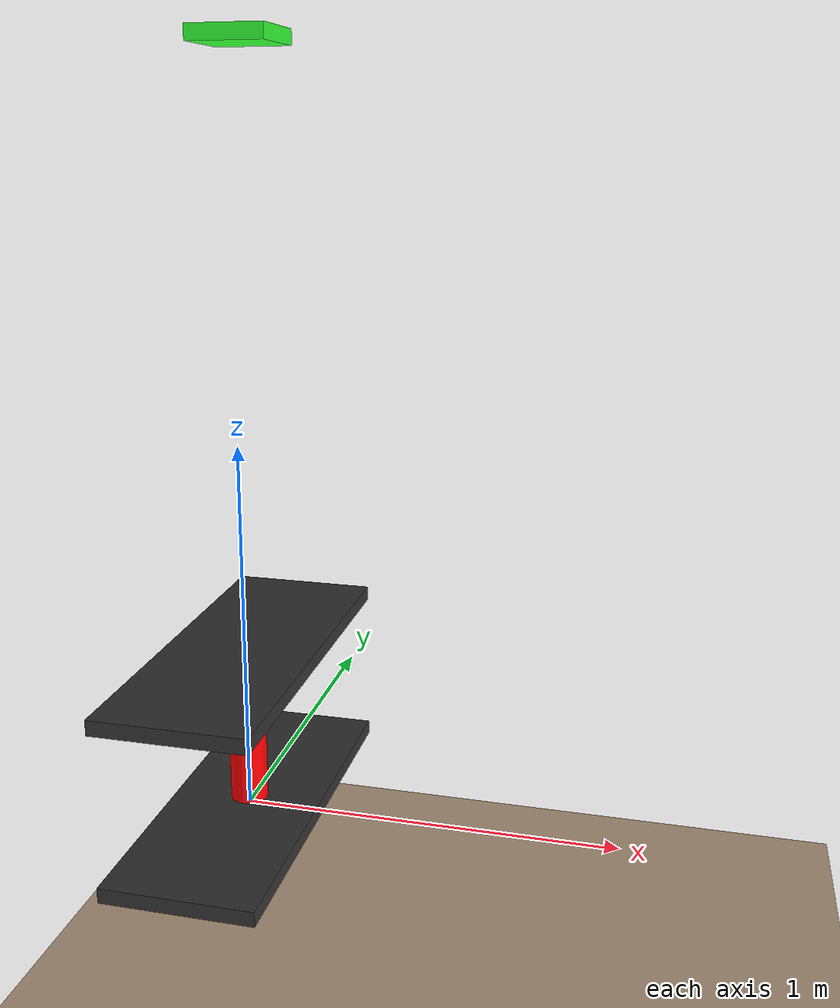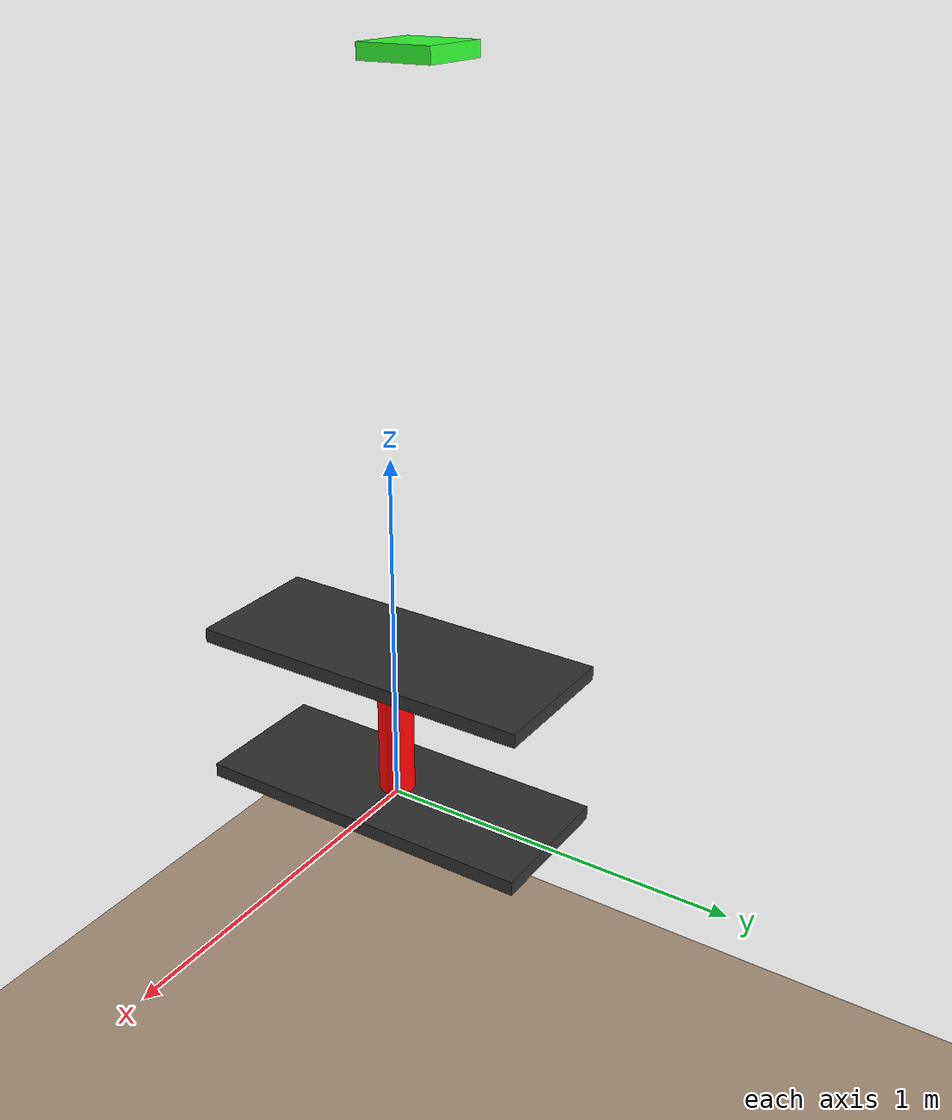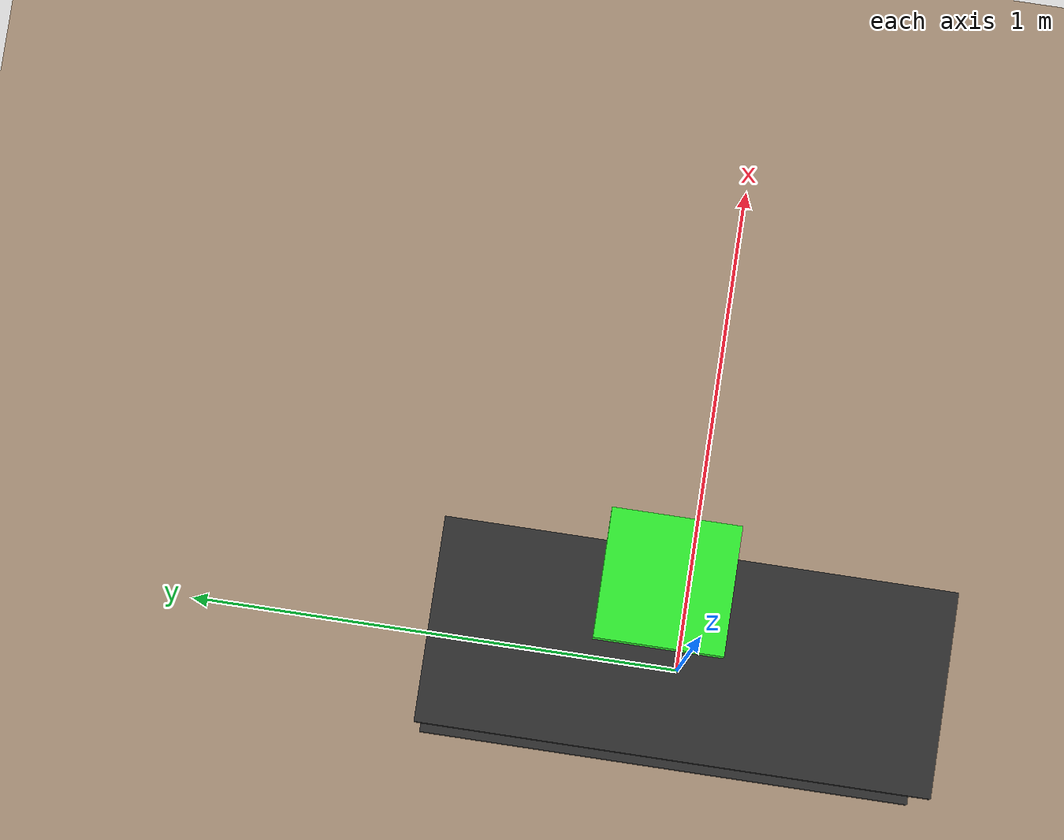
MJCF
<mujoco model="spring">
    <compiler coordinate="local" angle="radian"/>
    <option gravity="0 0 -9.8"/>
    <size njmax="795" nconmax="250" nstack="631875" />

 	<worldbody>
 		<geom name="ground" type="plane" pos="0 0 -0.925" size="4 4 .05" rgba="0.7 0.6 0.5 1"/>
 		<body name="bot" pos="0.0 0.0 0">
            <geom name="bot" rgba="0.2 0.2 0.2 1" type="box" size="0.2 0.5 0.02" contype="1" conaffinity="1" />
        	<body name="rod" pos="0.0 0.0 0.22">
                <!-- for cylinder it seems to take radius and full randius -->
        		<geom name="rod" rgba="1.0 0.0 0.0 1" type="cylinder" size="0.05 0.2" contype="1" conaffinity="1" />
        		<body name="top" pos="0.0 0.0 0.22">
        			<geom name="top" rgba="0.2 0.2 0.2 1" type="box" size="0.2 0.5 0.02" contype="1" conaffinity="1" group="0"/>
                    <joint name="axle" type="slide" pos="0 0 0.42" axis="0 0 1" range="0.0 1.0"/>
                </body>

        	</body>
        </body>

        <body name="box" pos="0.0 0.1 2.0">
            <geom name="box" rgba="0.2 1.0 0.2 1" type="box" size="0.1 0.1 0.02" contype="1" conaffinity="1" />
            <inertial pos="0 0 0" mass="10000" diaginertia="166.667 166.667 166.667"/>
            <joint name="box" type="free" limited="false"/>
        </body>
    </worldbody>
 </mujoco>
